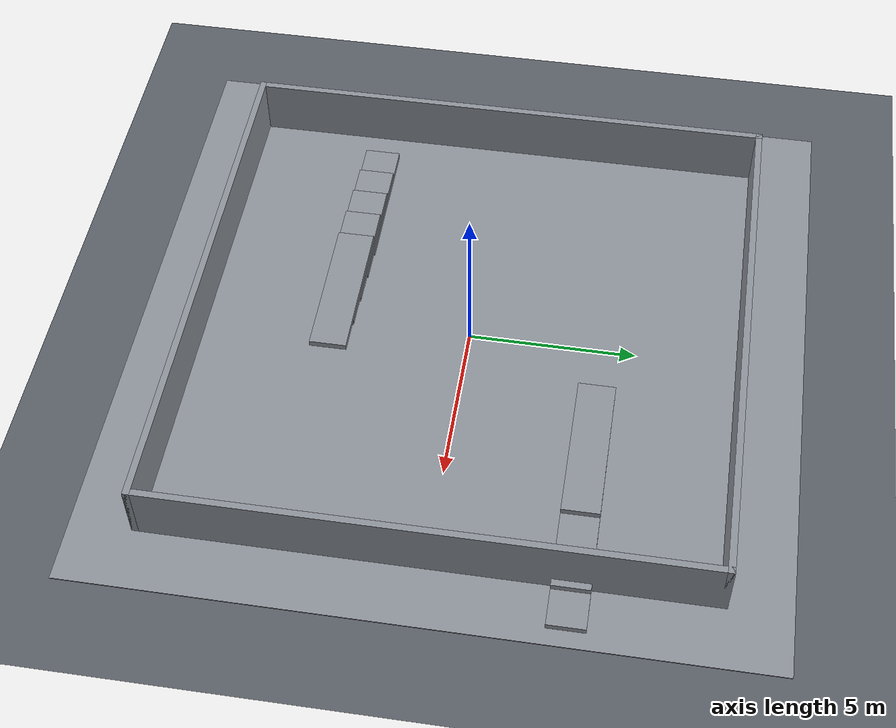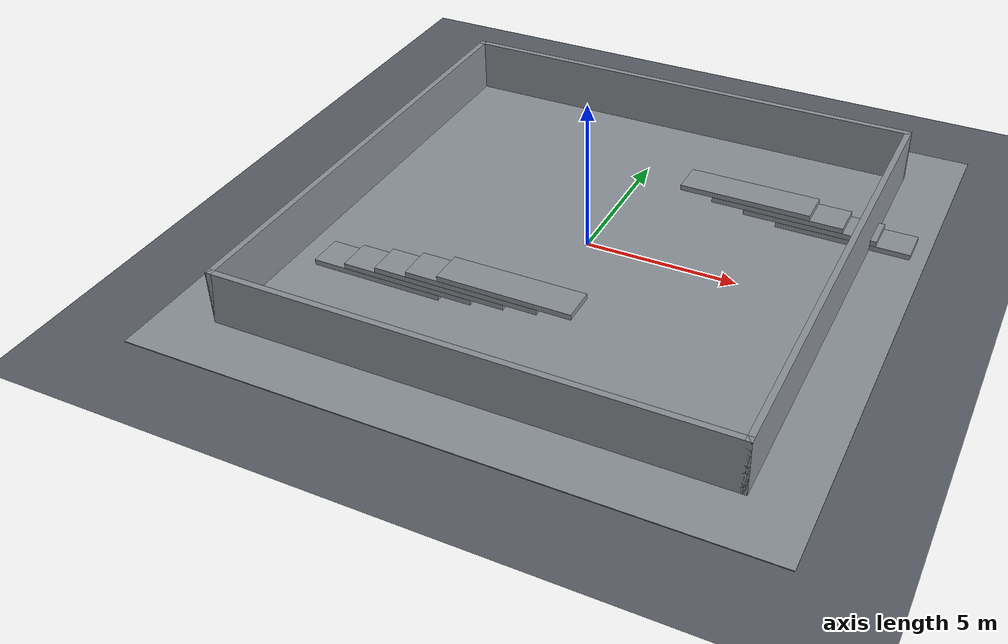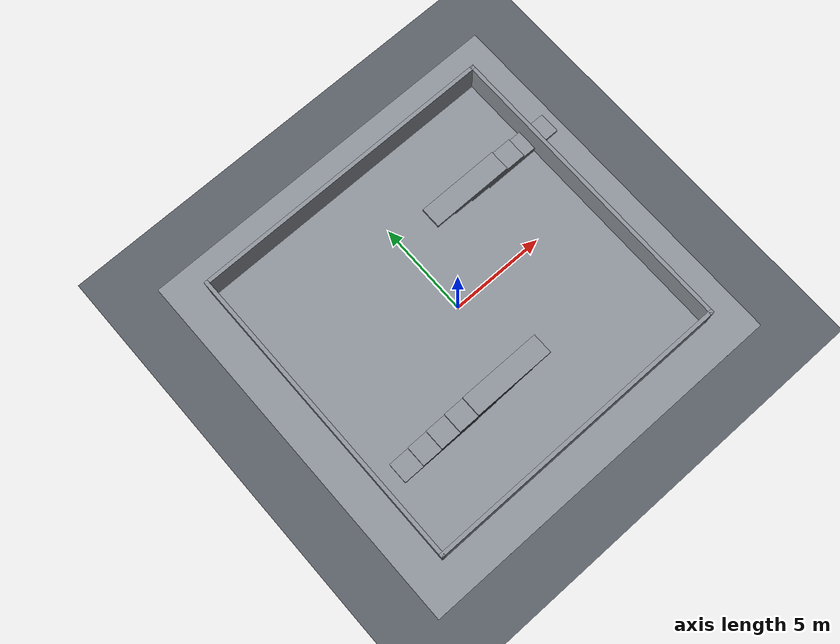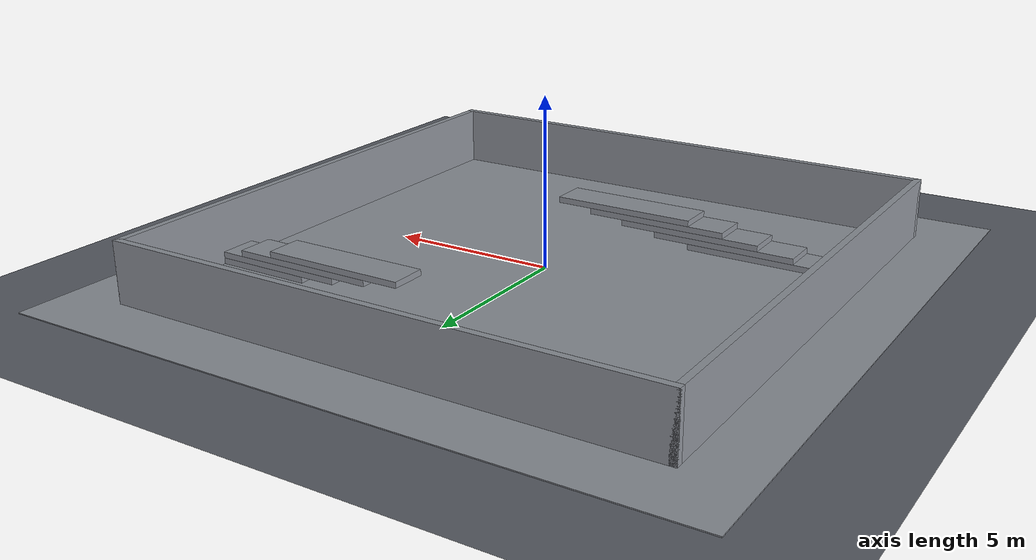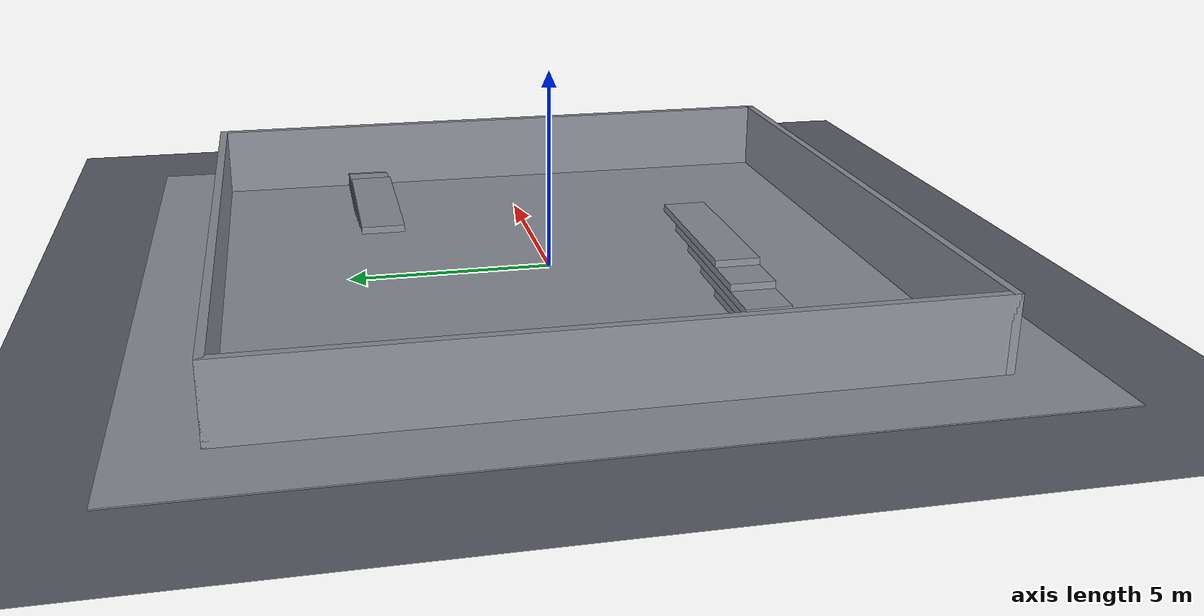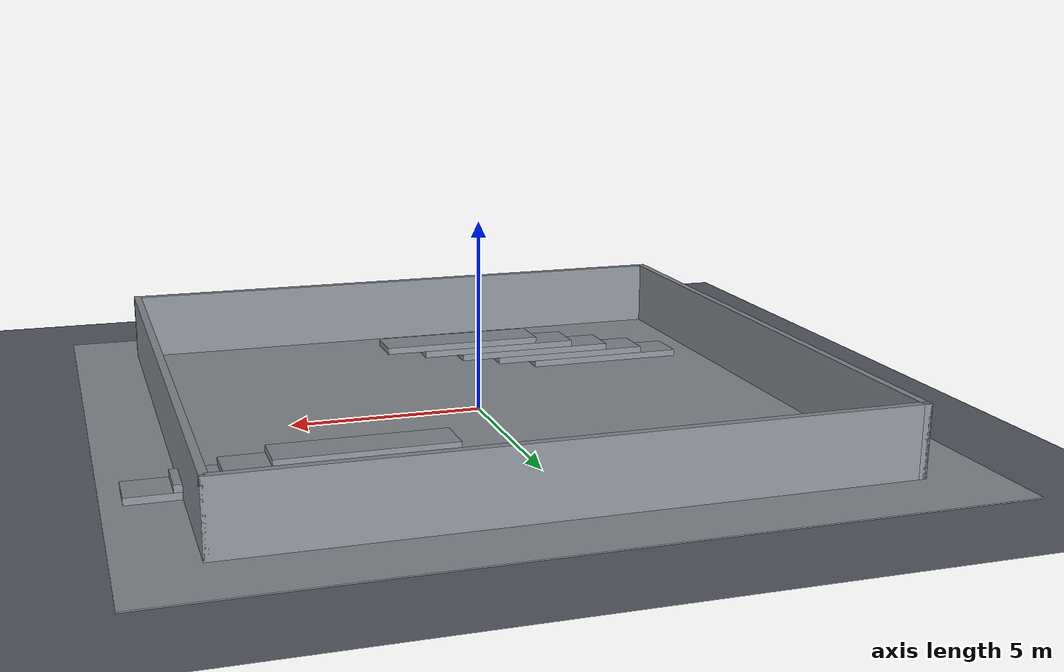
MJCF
<!-- Generated by robot_lab_maps/tools/gen_mjcf_worlds.py from
     maps/terrain_stairs/worlds/terrain_stairs.world - do not edit by hand. -->
<mujoco model="terrain_stairs">
  <option gravity="0 0 -9.81" />
  <compiler angle="radian" />
  <worldbody>
    <geom type="plane" size="100 100 0.1" contype="0" conaffinity="0" rgba="0.35 0.37 0.4 1" />
    <geom pos="0 0 -0.05" quat="1 0 0 0" rgba="0.55 0.57 0.6 1" type="box" size="10 10 0.05" />
    <geom pos="0 -8.1 0.9" quat="1 0 0 0" rgba="0.55 0.57 0.6 1" type="box" size="8.2 0.1 0.9" />
    <geom pos="0 8.1 0.9" quat="1 0 0 0" rgba="0.55 0.57 0.6 1" type="box" size="8.2 0.1 0.9" />
    <geom pos="-8.1 0 0.9" quat="1 0 0 0" rgba="0.55 0.57 0.6 1" type="box" size="0.1 8.2 0.9" />
    <geom pos="8.1 0 0.9" quat="1 0 0 0" rgba="0.55 0.57 0.6 1" type="box" size="0.1 8.2 0.9" />
    <geom pos="-5 -4 0.09" quat="1 0 0 0" rgba="0.55 0.57 0.6 1" type="box" size="2.2 0.55 0.09" />
    <geom pos="-3.9 -4 0.27" quat="1 0 0 0" rgba="0.55 0.57 0.6 1" type="box" size="2.2 0.55 0.09" />
    <geom pos="-2.8 -4 0.45" quat="1 0 0 0" rgba="0.55 0.57 0.6 1" type="box" size="2.2 0.55 0.09" />
    <geom pos="-1.7 -4 0.63" quat="1 0 0 0" rgba="0.55 0.57 0.6 1" type="box" size="2.2 0.55 0.09" />
    <geom pos="-0.6 -4 0.81" quat="1 0 0 0" rgba="0.55 0.57 0.6 1" type="box" size="2.2 0.55 0.09" />
    <geom pos="4 4 0.63" quat="1 0 0 0" rgba="0.55 0.57 0.6 1" type="box" size="2.2 0.55 0.09" />
    <geom pos="5.1 4 0.45" quat="1 0 0 0" rgba="0.55 0.57 0.6 1" type="box" size="2.2 0.55 0.09" />
    <geom pos="6.2 4 0.27" quat="1 0 0 0" rgba="0.55 0.57 0.6 1" type="box" size="2.2 0.55 0.09" />
    <geom pos="7.3 4 0.09" quat="1 0 0 0" rgba="0.55 0.57 0.6 1" type="box" size="2.2 0.55 0.09" />
    <light diffuse="0.8 0.8 0.8" pos="0 0 10" dir="0 0 -1" castshadow="true" />
    <light diffuse="0.3 0.3 0.3" pos="0 -6 6" dir="0 1 -1" />
  </worldbody>
</mujoco>
